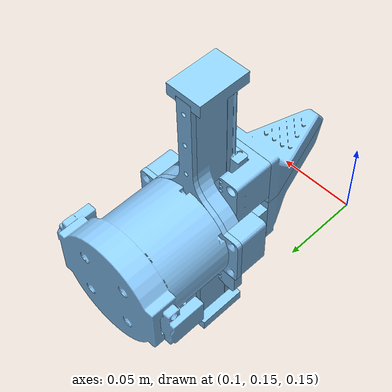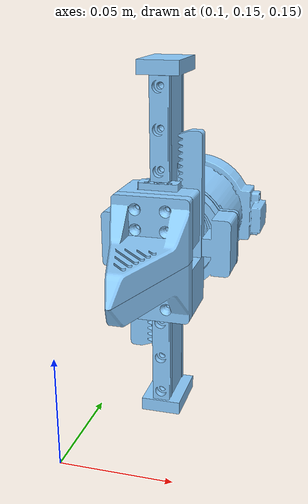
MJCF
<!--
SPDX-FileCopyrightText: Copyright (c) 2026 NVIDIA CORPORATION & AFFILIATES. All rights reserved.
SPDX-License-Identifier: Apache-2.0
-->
<?xml version="1.0" encoding="utf-8"?>
<mujoco model="rebot devarm gripper ghost">
  <asset>
    <mesh name="ghost_pla7_green" file="pla7_green.STL"/>
    <mesh name="ghost_cnc7" file="cnc7.STL"/>
    <mesh name="ghost_motor_7" file="motor_7.STL"/>
    <mesh name="ghost_pla_left" file="pla_left.STL"/>
    <mesh name="ghost_cnc_left" file="cnc_left.STL"/>
    <mesh name="ghost_pla_right" file="pla_right.STL"/>
    <mesh name="ghost_cnc_right" file="cnc_right.STL"/>
    <material name="leader_ghost" rgba="0.55 0.80 1.00 1"/>
  </asset>

  <worldbody>
    <body name="rebot_ghost" mocap="true" pos="0.12 0.16 0.22"
          quat="0.5 0.5 -0.5 -0.5">
      <geom name="rebot_ghost_pla7" type="mesh" mesh="ghost_pla7_green"
            material="leader_ghost" contype="0" conaffinity="0" mass="0" group="2"/>
      <geom name="rebot_ghost_cnc7" type="mesh" mesh="ghost_cnc7"
            material="leader_ghost" contype="0" conaffinity="0" mass="0" group="2"/>
      <geom name="rebot_ghost_motor" type="mesh" mesh="ghost_motor_7"
            material="leader_ghost" contype="0" conaffinity="0" mass="0" group="2"/>
    </body>

    <body name="rebot_ghost_left" mocap="true" pos="0.12 0.16 0.22"
          quat="0.5 0.5 -0.5 -0.5">
      <geom name="rebot_ghost_pla_left" type="mesh" mesh="ghost_pla_left"
            material="leader_ghost" pos="-0.041939 -0.000073385 0"
            quat="0.5 0.5 -0.5 0.5"
            contype="0" conaffinity="0" mass="0" group="2"/>
      <geom name="rebot_ghost_cnc_left" type="mesh" mesh="ghost_cnc_left"
            material="leader_ghost" pos="-0.041939 -0.000073385 0"
            quat="0.5 0.5 -0.5 0.5"
            contype="0" conaffinity="0" mass="0" group="2"/>
    </body>

    <body name="rebot_ghost_right" mocap="true" pos="0.12 0.16 0.22"
          quat="0.5 0.5 -0.5 -0.5">
      <geom name="rebot_ghost_pla_right" type="mesh" mesh="ghost_pla_right"
            material="leader_ghost" pos="-0.041939 0.000073385 0"
            quat="0.5 -0.5 -0.5 -0.5"
            contype="0" conaffinity="0" mass="0" group="2"/>
      <geom name="rebot_ghost_cnc_right" type="mesh" mesh="ghost_cnc_right"
            material="leader_ghost" pos="-0.041939 0.000073385 0"
            quat="0.5 -0.5 -0.5 -0.5"
            contype="0" conaffinity="0" mass="0" group="2"/>
    </body>
  </worldbody>
</mujoco>
